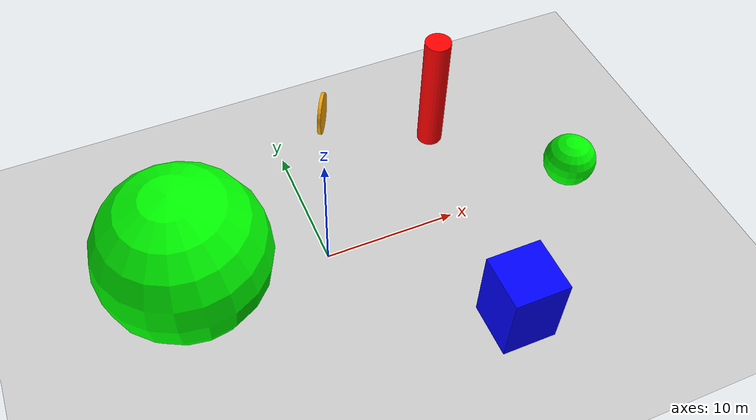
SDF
<sdf version="1.9">
 <world name="impalpable_greyness">
  <physics type="ode">
   <max_step_size>0.004</max_step_size>
   <real_time_factor>1.0</real_time_factor>
   <real_time_update_rate>250</real_time_update_rate>
  </physics>
  <plugin name="gz::sim::systems::Physics" filename="gz-sim-physics-system">
   <engine><filename>libgz-physics-dartsim-plugin</filename></engine>
  </plugin>
  <plugin name="gz::sim::systems::UserCommands" filename="gz-sim-user-commands-system"/>
  <plugin name="gz::sim::systems::SceneBroadcaster" filename="gz-sim-scene-broadcaster-system"/>
  <plugin name="gz::sim::systems::Contact" filename="gz-sim-contact-system"/>
  <plugin name="gz::sim::systems::Imu" filename="gz-sim-imu-system"/>
  <plugin name="gz::sim::systems::AirPressure" filename="gz-sim-air-pressure-system"/>
  <plugin name="gz::sim::systems::ApplyLinkWrench" filename="gz-sim-apply-link-wrench-system"/>
  <plugin name="gz::sim::systems::NavSat" filename="gz-sim-navsat-system"/>
  <plugin name="gz::sim::systems::Sensors" filename="gz-sim-sensors-system">
   <render_engine>ogre2</render_engine>
  </plugin>
  <plugin filename="gz-sim-wind-effects-system" name="gz::sim::systems::WindEffects">
   <force_approximation_scaling_factor>1</force_approximation_scaling_factor>
   <horizontal>
    <magnitude>
     <time_for_rise>5</time_for_rise>
     <sin><amplitude_percent>0.1</amplitude_percent><period>30</period></sin>
     <noise type="gaussian"><mean>0</mean><stddev>0.0002</stddev></noise>
    </magnitude>
    <direction>
     <time_for_rise>10</time_for_rise>
     <sin><amplitude>5</amplitude><period>20</period></sin>
     <noise type="gaussian"><mean>0</mean><stddev>0.03</stddev></noise>
    </direction>
   </horizontal>
   <vertical><noise type="gaussian"><mean>0</mean><stddev>0.03</stddev></noise></vertical>
  </plugin>
  <gravity>0 0 -9.8</gravity>
  <magnetic_field>6e-06 2.3e-05 -4.2e-05</magnetic_field>
  <atmosphere type="adiabatic"/>
  <scene>
   <grid>false</grid>
   <ambient>0.4 0.4 0.4 1</ambient>
   <background>0.7 0.7 0.7 1</background>
   <shadows>true</shadows>
  </scene>
  <model name="axes">
   <static>1</static>
   <link name="link">
    <visual name="r">
     <cast_shadows>0</cast_shadows>
     <pose>5 0 0.1 0 0 0</pose>
     <geometry><box><size>10 0.01 0.01</size></box></geometry>
     <material>
      <ambient>1 0 0 0.8</ambient>
      <diffuse>1 0 0 0.8</diffuse>
      <emissive>1 0 0 0.8</emissive>
      <specular>0.5 0.5 0.5 0.8</specular>
     </material>
    </visual>
    <visual name="g">
     <cast_shadows>0</cast_shadows>
     <pose>0 5 0.1 0 0 0</pose>
     <geometry><box><size>0.01 10 0.01</size></box></geometry>
     <material>
      <ambient>0 1 0 0.8</ambient>
      <diffuse>0 1 0 0.8</diffuse>
      <emissive>0 1 0 0.8</emissive>
      <specular>0.5 0.5 0.5 0.8</specular>
     </material>
    </visual>
    <visual name="b">
     <cast_shadows>0</cast_shadows>
     <pose>0 0 5.1 0 0 0</pose>
     <geometry><box><size>0.01 0.01 10</size></box></geometry>
     <material>
      <ambient>0 0 1 0.8</ambient>
      <diffuse>0 0 1 0.8</diffuse>
      <emissive>0 0 1 0.8</emissive>
      <specular>0.5 0.5 0.5 0.8</specular>
     </material>
    </visual>
    <sensor name="navsat_sensor" type="navsat"><always_on>1</always_on><update_rate>1</update_rate></sensor>
   </link>
  </model>
  <light name="sun" type="directional">
   <pose>0 0 500 0 -0 0</pose>
   <intensity>1</intensity>
   <direction>0.001 0.625 -0.78</direction>
   <diffuse>0.904 0.904 0.904 1</diffuse>
   <specular>0.271 0.271 0.271 1</specular>
   <attenuation>
    <range>2000</range>
    <constant>0.9</constant>
    <linear>0.01</linear>
    <quadratic>0.001</quadratic>
   </attenuation>
   <spot><inner_angle>0</inner_angle><outer_angle>0</outer_angle><falloff>0</falloff></spot>
  </light>
  <spherical_coordinates>
   <surface_model>EARTH_WGS84</surface_model>
   <world_frame_orientation>ENU</world_frame_orientation>
   <latitude_deg>45.547731543301055</latitude_deg>
   <longitude_deg>8.938851933598375</longitude_deg>
   <elevation>179</elevation>
  </spherical_coordinates>
  <model name="ground_plane">
   <static>true</static>
   <link name="link">
    <collision name="collision">
     <geometry><plane><normal>0 0 1</normal><size>1 1</size></plane></geometry>
    </collision>
    <visual name="visual">
     <geometry><plane><normal>0 0 1</normal><size>100 100</size></plane></geometry>
     <material>
      <ambient>0.8 0.8 0.8 1</ambient>
      <diffuse>0.8 0.8 0.8 1</diffuse>
      <specular>0.8 0.8 0.8 1</specular>
     </material>
    </visual>
    <inertial>
     <mass>1</mass>
     <inertia><ixx>1</ixx><ixy>0</ixy><ixz>0</ixz><iyy>1</iyy><iyz>0</iyz><izz>1</izz></inertia>
    </inertial>
   </link>
   <pose degrees="true">0 0 0 0 -0 0</pose>
  </model>
  <wind><linear_velocity>0.0 0.0 0.0</linear_velocity></wind>
  <model name="mario_coin">
   <pose degrees="true">0 0 15 30 90 0</pose>
   <static>true</static>
   <link name="cylinder_link">
    <visual name="visual">
     <geometry><cylinder><radius>1.25</radius><length>0.2</length></cylinder></geometry>
     <material>
      <ambient>0.96 0.64 0.01 1.0</ambient>
      <diffuse>0.96 0.64 0.01 1.0</diffuse>
      <specular>0.96 0.64 0.01 1.0</specular>
      <emissive>0.96 0.64 0.01 1.0</emissive>
     </material>
    </visual>
   </link>
  </model>
  <model name="cylinder">
   <pose>12 8 5 0 0 0</pose>
   <static>true</static>
   <link name="link">
    <inertial><mass>10</mass><inertia><ixx>1</ixx><iyy>1</iyy><izz>1</izz></inertia></inertial>
    <collision name="collision">
     <geometry><cylinder><radius>1</radius><length>10</length></cylinder></geometry>
    </collision>
    <visual name="visual">
     <geometry><cylinder><radius>1</radius><length>10</length></cylinder></geometry>
     <material><ambient>1 0 0 1.0</ambient><diffuse>1 0 0 1.0</diffuse></material>
    </visual>
   </link>
  </model>
  <model name="sphere">
   <pose>20 0 2 0 0 0</pose>
   <static>true</static>
   <link name="link">
    <inertial><mass>10</mass><inertia><ixx>1</ixx><iyy>1</iyy><izz>1</izz></inertia></inertial>
    <collision name="collision"><geometry><sphere><radius>2</radius></sphere></geometry></collision>
    <visual name="visual">
     <geometry><sphere><radius>2</radius></sphere></geometry>
     <material><ambient>0 1 0 1.0</ambient><diffuse>0 1 0 1.0</diffuse></material>
    </visual>
   </link>
  </model>
  <model name="sphere2">
   <pose>-10 0 6 0 0 0</pose>
   <static>true</static>
   <link name="link">
    <inertial><mass>10</mass><inertia><ixx>1</ixx><iyy>1</iyy><izz>1</izz></inertia></inertial>
    <collision name="collision"><geometry><sphere><radius>6</radius></sphere></geometry></collision>
    <visual name="visual">
     <geometry><sphere><radius>6</radius></sphere></geometry>
     <material><ambient>0 1 0 1.0</ambient><diffuse>0 1 0 1.0</diffuse></material>
    </visual>
   </link>
  </model>
  <model name="cube">
   <pose>10 -10 3 0 0 0</pose>
   <static>true</static>
   <link name="link">
    <inertial><mass>10</mass><inertia><ixx>1</ixx><iyy>1</iyy><izz>1</izz></inertia></inertial>
    <collision name="collision"><geometry><box><size>4.0 4.0 6.0</size></box></geometry></collision>
    <visual name="visual">
     <geometry><box><size>4.0 4.0 6.0</size></box></geometry>
     <material><ambient>0 0 1 1.0</ambient><diffuse>0 0 1 1.0</diffuse></material>
    </visual>
   </link>
  </model>
 </world>
</sdf>
